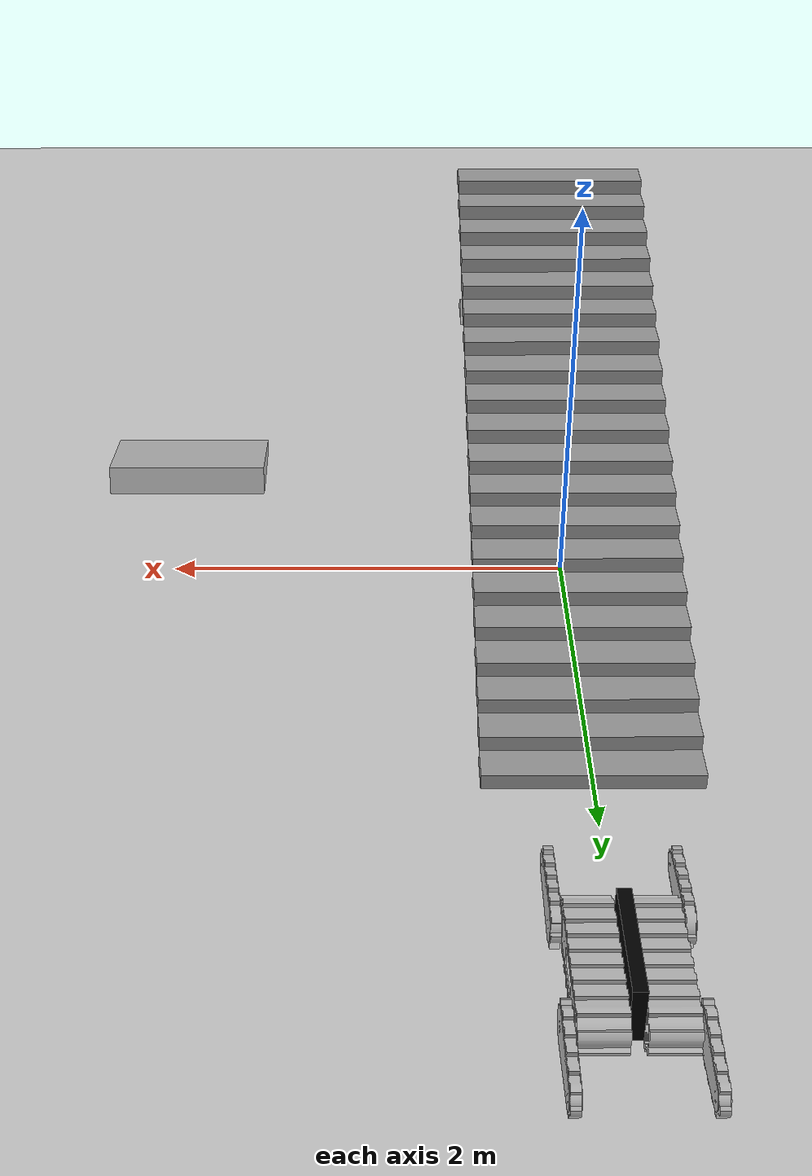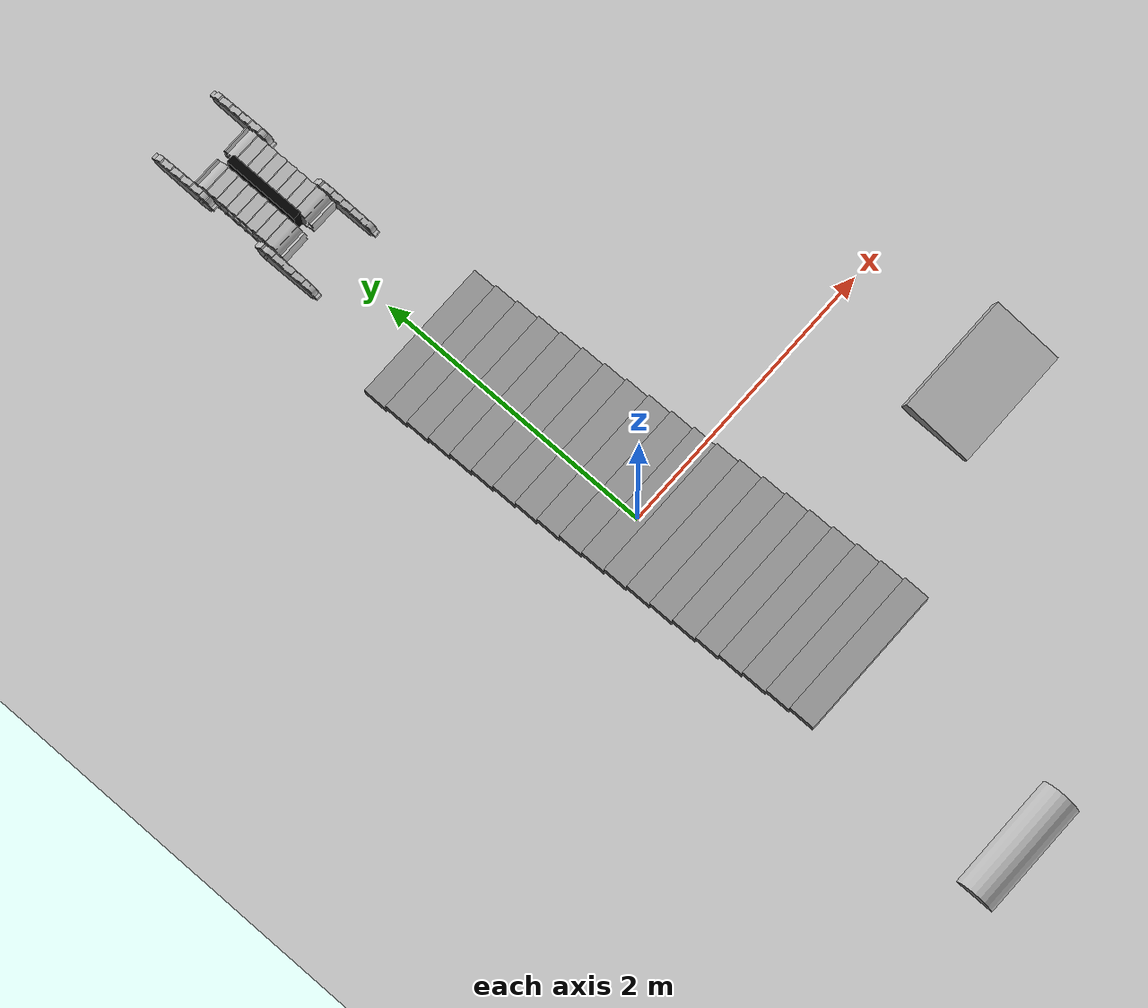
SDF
<?xml version="1.0" ?>
<sdf version="1.6">
    <world name="Nubot_Pummba_demo">
        <!--A demo world for tracked vehicles.-->

        <include>
            <uri>model://sun</uri>
        </include>

        <include>
            <uri>model://ground_plane</uri>
        </include>

        <include>
            <uri>model://stairs_very_simple</uri>
        </include>

        <include>
            <uri>model://cylinder_obstacle</uri>
        </include>

        <include>
            <uri>model://box_obstacle</uri>
        </include>

        <model name="Nubot_Pummba">
            <pose frame=''>0 3 0.15 0 0 -1.5708</pose>
            <include>
                <uri>model://Nubot_Pummba</uri>
            </include>
        </model>

    </world>
</sdf>

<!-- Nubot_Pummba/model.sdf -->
<sdf version='1.6'>
  <model name='Nubot_Pummba'>
    <!--base_link-->
    <link name='base_link'>
      <pose frame=''>0 0 0 0 0 0</pose>
      <inertial>
        <pose frame=''>-0.122 0 0.118 1.5708 -0 0</pose>
        <mass>10</mass>
        <inertia>
          <ixx>0.0545</ixx>
          <ixy>0</ixy>
          <ixz>0</ixz>
          <iyy>0.37442</iyy>
          <iyz>0</iyz>
          <izz>0.41992</izz>
        </inertia>
      </inertial>
      <self_collide>0</self_collide>
      <gravity>1</gravity>
      <kinematic>0</kinematic>
      <enable_wind>0</enable_wind>
      <visual name='base_link_visual'>
        <pose frame=''>0 0 0.055 0 -0 0</pose>
        <geometry>
          <box>
            <size>0.544 0.06 0.25</size>
          </box>
        </geometry>
        <material>
          <shader type='pixel'>
            <normal_map>__default__</normal_map>
          </shader>
          <script>
            <name>ModelPreview_1::base_link::base_link_visual_MATERIAL_</name>
            <uri>__default__</uri>
          </script>
          <ambient>0 0 0 1</ambient>
          <diffuse>0 0 0 1</diffuse>
          <specular>0 0 0 1</specular>
          <emissive>0 0 0 1</emissive>
        </material>
        <transparency>0</transparency>
        <cast_shadows>1</cast_shadows>
      </visual>
      <collision name='base_link_collision'>
        <laser_retro>0</laser_retro>
        <max_contacts>10</max_contacts>
        <pose frame=''>0 0 0.055 0 -0 0</pose>
        <geometry>
          <box>
            <size>0.544 0.06 0.25</size>
          </box>
        </geometry>
        <surface>
          <friction>
            <ode>
              <mu>1</mu>
              <mu2>1</mu2>
              <fdir1>0 0 0</fdir1>
              <slip1>0</slip1>
              <slip2>0</slip2>
            </ode>
            <torsional>
              <coefficient>1</coefficient>
              <patch_radius>0</patch_radius>
              <surface_radius>0</surface_radius>
              <use_patch_radius>1</use_patch_radius>
              <ode>
                <slip>0</slip>
              </ode>
            </torsional>
          </friction>
          <bounce>
            <restitution_coefficient>0</restitution_coefficient>
            <threshold>1e+06</threshold>
          </bounce>
          <contact>
            <collide_without_contact>0</collide_without_contact>
            <collide_without_contact_bitmask>1</collide_without_contact_bitmask>
            <collide_bitmask>1</collide_bitmask>
            <ode>
              <soft_cfm>0</soft_cfm>
              <soft_erp>0.2</soft_erp>
              <kp>1e+13</kp>
              <kd>1</kd>
              <max_vel>0.01</max_vel>
              <min_depth>0</min_depth>
            </ode>
          </contact>
        </surface>
      </collision>
    </link>

    <!--left_track-->
    <link name='left_track'>
      <pose frame=''>-0 0.132 0 0 -0 0</pose>
      <inertial>
        <pose frame=''>0 0 0 0 -0 0</pose>
        <mass>20</mass>
        <inertia>
          <ixx>0.15</ixx>
          <ixy>0</ixy>
          <ixz>0</ixz>
          <iyy>0.9</iyy>
          <iyz>0</iyz>
          <izz>0.9</izz>
        </inertia>
      </inertial>
      <gravity>1</gravity>
      <kinematic>0</kinematic>
      <self_collide>0</self_collide>
      <enable_wind>0</enable_wind>
      <visual name='left_track_visual_1'><!--main_track-->
        <pose frame=''>0.272 0 0 0 0 1.5708</pose>
        <geometry>
          <mesh>
            <uri>model://Nubot_Pummba/meshes/main_track.dae</uri>
          </mesh>
        </geometry>
      </visual>
      <visual name='left_track_visual'><!--main_board-->
        <pose frame=''>0 0.098 0 0 0 0</pose>
        <geometry>
          <mesh>
            <uri>model://Nubot_Pummba/meshes/main_board.dae</uri>
          </mesh>
        </geometry>
      </visual>
      <visual name='left_track_visual_2'>
        <pose frame=''>-0.272 0 0 1.5708 -0 0</pose>
        <geometry>
          <cylinder>
            <length>0.2</length>
            <radius>0.105</radius>
          </cylinder>
        </geometry>
        <material>
          <shader type='pixel'>
            <normal_map>__default__</normal_map>
          </shader>
          <script>
            <name>ModelPreview_1::left_track::left_track_visual_2_MATERIAL_</name>
            <uri>__default__</uri>
          </script>
          <ambient>0 0 0 1</ambient>
          <diffuse>0 0 0 1</diffuse>
          <specular>0 0 0 1</specular>
          <emissive>1 1 1 1</emissive>
        </material>
        <transparency>1</transparency><!--disappear the other wheel-->
        <cast_shadows>1</cast_shadows>
      </visual>
      <collision name='left_track_collision_1'>
        <max_contacts>10</max_contacts>
        <pose frame=''>0.272 0 0 1.5708 -0 0</pose>
        <geometry>
          <cylinder>
            <radius>0.105</radius>
            <length>0.2</length>
          </cylinder>
        </geometry>
        <surface>
          <friction>
            <ode>
              <mu>0.7</mu>
              <mu2>150</mu2>
              <fdir1>0 1 0</fdir1>
            </ode>
          </friction>
        </surface>
      </collision>
      <collision name='left_track_collision_2'>
        <max_contacts>10</max_contacts>
        <pose frame=''>-0.272 0 0 1.5708 -0 0</pose>
        <geometry>
          <cylinder>
            <radius>0.105</radius>
            <length>0.2</length>
          </cylinder>
        </geometry>
        <surface>
          <friction>
            <ode>
              <mu>0.7</mu>
              <mu2>150</mu2>
              <fdir1>0 1 0</fdir1>
            </ode>
          </friction>
        </surface>
      </collision>
      <collision name='left_track_collision'>
        <max_contacts>10</max_contacts>
        <pose frame=''>0 0 0 1.5708 -0 1.5708</pose>
        <geometry>
          <box>
            <size>0.2 0.21 0.544</size>
          </box>
        </geometry>
        <surface>
          <friction>
            <ode>
              <mu>0.7</mu>
              <mu2>150</mu2>
              <fdir1>0 1 0</fdir1>
            </ode>
          </friction>
        </surface>
      </collision>
    </link>

    <!--right_track-->
    <link name='right_track'>
      <pose frame=''>0 -0.132 -0 0 -0 0</pose>
      <inertial>
        <pose frame=''>0 0 0 0 -0 0</pose>
        <mass>20</mass>
        <inertia>
          <ixx>0.15</ixx>
          <ixy>0</ixy>
          <ixz>0</ixz>
          <iyy>0.9</iyy>
          <iyz>0</iyz>
          <izz>0.9</izz>
        </inertia>
      </inertial>
      <gravity>1</gravity>
      <kinematic>0</kinematic>
      <self_collide>0</self_collide>
      <enable_wind>0</enable_wind>
      <visual name='right_track_visual_2'><!--main_track-->
        <pose frame=''>-0.272 0 0 0 0 -1.5708</pose>
        <geometry>
          <mesh>
            <uri>model://Nubot_Pummba/meshes/main_track.dae</uri>
          </mesh>
        </geometry>
      </visual>
      <visual name='right_track_visual'><!--main_board-->
        <pose frame=''>0 -0.098 0 0 0 0</pose>
        <geometry>
          <mesh>
            <uri>model://Nubot_Pummba/meshes/main_board.dae</uri>
          </mesh>
        </geometry>
      </visual>
      <visual name='right_track_visual_1'>
        <pose frame=''>0.272 0 0 1.5708 -0 0</pose>
        <geometry>
          <cylinder>
            <length>0.2</length>
            <radius>0.105</radius>
          </cylinder>
        </geometry>
        <material>
          <shader type='pixel'>
            <normal_map>__default__</normal_map>
          </shader>
          <script>
            <name>ModelPreview_1::right_track::right_track_visual_1_MATERIAL_</name>
            <uri>__default__</uri>
          </script>
          <ambient>0 0 0 1</ambient>
          <diffuse>0 0 0 1</diffuse>
          <specular>0 0 0 1</specular>
          <emissive>1 1 1 1</emissive>
        </material>
        <transparency>1</transparency><!--disappear the other wheel-->
        <cast_shadows>1</cast_shadows>
      </visual>
      <collision name='right_track_collision_1'>
        <max_contacts>10</max_contacts>
        <pose frame=''>0.272 0 0 1.5708 -0 0</pose>
        <geometry>
          <cylinder>
            <radius>0.105</radius>
            <length>0.2</length>
          </cylinder>
        </geometry>
        <surface>
          <friction>
            <ode>
              <mu>0.7</mu>
              <mu2>150</mu2>
              <fdir1>0 1 0</fdir1>
            </ode>
          </friction>
        </surface>
      </collision>
      <collision name='right_track_collision'>
        <max_contacts>10</max_contacts>
        <pose frame=''>0 0 0 1.5708 -0 1.5708</pose>
        <geometry>
          <box>
            <size>0.2 0.21 0.544</size>
          </box>
        </geometry>
        <surface>
          <friction>
            <ode>
              <mu>0.7</mu>
              <mu2>150</mu2>
              <fdir1>0 1 0</fdir1>
            </ode>
          </friction>
        </surface>
      </collision>
      <collision name='right_track_collision_2'>
        <max_contacts>10</max_contacts>
        <pose frame=''>-0.272 0 0 1.5708 -0 0</pose>
        <geometry>
          <cylinder>
            <radius>0.105</radius>
            <length>0.2</length>
          </cylinder>
        </geometry>
        <surface>
          <friction>
            <ode>
              <mu>0.7</mu>
              <mu2>150</mu2>
              <fdir1>0 1 0</fdir1>
            </ode>
          </friction>
        </surface>
      </collision>
    </link>

    <!--front_left_flipper-->
    <link name='front_left_flipper'>
      <pose frame=''>0.272 0.263 0 0 -0.0 0</pose>
      <inertial>
        <pose frame=''>0.135 0 0 0 -0 0</pose>
        <mass>2.4</mass>
        <inertia>
          <ixx>0.00574</ixx>
          <ixy>0</ixy>
          <ixz>0</ixz>
          <iyy>0.05090</iyy>
          <iyz>0</iyz>
          <izz>0.04640</izz>
        </inertia>
      </inertial>
      <gravity>1</gravity>
      <velocity_decay/>
      <self_collide>1</self_collide>
      <kinematic>0</kinematic>
      <enable_wind>0</enable_wind>

      <visual name='front_left_flipper_visual_large_wheel_visual'><!--flipper_track-->
        <pose frame=''>0 0 0 0 0 -1.5708</pose>
        <geometry>
          <mesh>
            <uri>model://Nubot_Pummba/meshes/flipper_track.dae</uri>
          </mesh>
        </geometry>
      </visual>
      <visual name='front_left_flipper_visual_small_wheel_visual_1'><!--flipper_board inside-->
        <pose frame=''>0 -0.023 0 0 0 3.1416</pose>
        <geometry>
          <mesh>
            <uri>model://Nubot_Pummba/meshes/flipper_board.dae</uri>
          </mesh>
        </geometry>
      </visual>
      <visual name='front_left_flipper_visual_middle_bar_visual_4'><!--flipper_board outside-->
        <pose frame=''>0 0.023 0 0 0 3.1416</pose>
        <geometry>
          <mesh>
            <uri>model://Nubot_Pummba/meshes/flipper_board.dae</uri>
          </mesh>
        </geometry>
      </visual>
      <visual name='front_left_flipper_visual_bottom_bar_visual_3'>
        <pose frame=''>0.1635 0 -0.04 0 -0.076 0</pose>
        <geometry>
          <box>
            <size>0.327 0.048 0.105</size>
          </box>
        </geometry>
        <material>
          <shader type='pixel'>
            <normal_map>__default__</normal_map>
          </shader>
          <script>
            <name>ModelPreview_1::front_left_flipper::front_left_flipper_visual_bottom_bar_visual_3_MATERIAL_</name>
            <uri>__default__</uri>
          </script>
          <ambient>0 0 0 1</ambient>
          <diffuse>0 0 0 1</diffuse>
          <specular>0 0 0 1</specular>
          <emissive>0 0 0 1</emissive>
        </material>
        <transparency>1</transparency><!--disappear the bar-->
        <cast_shadows>1</cast_shadows>
      </visual>
      <visual name='front_left_flipper_visual_top_bar_visual_2'>
        <pose frame=''>0.1635 0 0.04 0 0.076 0</pose>
        <geometry>
          <box>
            <size>0.327 0.048 0.105</size>
          </box>
        </geometry>
        <material>
          <shader type='pixel'>
            <normal_map>__default__</normal_map>
          </shader>
          <script>
            <name>ModelPreview_1::front_left_flipper::front_left_flipper_visual_top_bar_visual_2_MATERIAL_</name>
            <uri>__default__</uri>
          </script>
          <ambient>0 0 0 1</ambient>
          <diffuse>0 0 0 1</diffuse>
          <specular>0 0 0 1</specular>
          <emissive>0 0 0 1</emissive>
        </material>
        <transparency>1</transparency><!--disappear the bar-->
        <cast_shadows>1</cast_shadows>
      </visual>

      <collision name='front_left_flipper_collision_large_wheel_collision'>
        <max_contacts>20</max_contacts>
        <pose frame=''>0 0 0 1.5708 -0 0</pose>
        <geometry>
          <cylinder>
            <radius>0.105</radius>
            <length>0.04</length>
          </cylinder>
        </geometry>
        <surface>
          <friction>
            <ode>
              <mu>0.7</mu>
              <mu2>150</mu2>
              <fdir1>0 1 0</fdir1>
            </ode>
          </friction>
          <contact>
            <ode/>
          </contact>
        </surface>
      </collision>
      <collision name='front_left_flipper_collision_small_wheel_collision_1'>
        <max_contacts>20</max_contacts>
        <pose frame=''>0.327 0 0 1.5708 -0 0</pose>
        <geometry>
          <cylinder>
            <radius>0.08</radius>
            <length>0.04</length>
          </cylinder>
        </geometry>
        <surface>
          <friction>
            <ode>
              <mu>0.7</mu>
              <mu2>150</mu2>
              <fdir1>0 1 0</fdir1>
            </ode>
          </friction>
          <contact>
            <ode/>
          </contact>
        </surface>
      </collision>
      <collision name='front_left_flipper_collision_middle_bar_collision_4'>
        <max_contacts>20</max_contacts>
        <pose frame=''>0.166 0 0 0 0 0</pose>
        <geometry>
          <box>
            <size>0.2 0.048 0.07</size>
          </box>
        </geometry>
        <surface>
          <friction>
            <ode>
              <mu>0.7</mu>
              <mu2>150</mu2>
              <fdir1>0 1 0</fdir1>
            </ode>
          </friction>
          <contact>
            <ode/>
          </contact>
        </surface>
      </collision>
      <collision name='front_left_flipper_collision_bottom_bar_collision_3'>
        <max_contacts>20</max_contacts>
        <pose frame=''>0.1635 0 -0.04 0 -0.076 0</pose>
        <geometry>
          <box>
            <size>0.327 0.048 0.105</size>
          </box>
        </geometry>
        <surface>
          <friction>
            <ode>
              <mu>0.7</mu>
              <mu2>150</mu2>
              <fdir1>0 1 0</fdir1>
            </ode>
          </friction>
          <contact>
            <ode/>
          </contact>
        </surface>
      </collision>
      <collision name='front_left_flipper_collision_top_bar_collision_2'>
        <max_contacts>20</max_contacts>
        <pose frame=''>0.1635 0 0.04 0 0.076 0</pose>
        <geometry>
          <box>
            <size>0.327 0.048 0.105</size>
          </box>
        </geometry>
        <surface>
          <friction>
            <ode>
              <mu>0.7</mu>
              <mu2>150</mu2>
              <fdir1>0 1 0</fdir1>
            </ode>
          </friction>
          <contact>
            <ode/>
          </contact>
        </surface>
      </collision>
    </link>

    <!--rear_left_flipper-->
    <link name='rear_left_flipper'>
      <pose frame=''>-0.272 0.263 0 3.1416 -0.0 3.1416</pose>
      <inertial>
        <pose frame=''>0.135 0 0 0 -0 0</pose>
        <mass>2.4</mass>
        <inertia>
          <ixx>0.00574</ixx>
          <ixy>0</ixy>
          <ixz>0</ixz>
          <iyy>0.05090</iyy>
          <iyz>0</iyz>
          <izz>0.04640</izz>
        </inertia>
      </inertial>
      <gravity>1</gravity>
      <velocity_decay/>
      <self_collide>1</self_collide>
      <kinematic>0</kinematic>
      <enable_wind>0</enable_wind>
      <visual name='rear_left_flipper_visual_large_wheel_visual'><!--flipper_track-->
        <pose frame=''>0 0 0 0 0 -1.5708</pose>
        <geometry>
          <mesh>
            <uri>model://Nubot_Pummba/meshes/flipper_track.dae</uri>
          </mesh>
        </geometry>
      </visual>
      <visual name='rear_left_flipper_visual_small_wheel_visual_1'><!--flipper_board inside-->
        <pose frame=''>0 -0.023 0 0 0 3.1416</pose>
        <geometry>
          <mesh>
            <uri>model://Nubot_Pummba/meshes/flipper_board.dae</uri>
          </mesh>
        </geometry>
      </visual>
      <visual name='rear_left_flipper_visual_middle_bar_visual_4'><!--flipper_board outside-->
        <pose frame=''>0 0.023 0 0 0 3.1416</pose>
        <geometry>
          <mesh>
            <uri>model://Nubot_Pummba/meshes/flipper_board.dae</uri>
          </mesh>
        </geometry>
      </visual>
      <visual name='rear_left_flipper_visual_bottom_bar_visual_3'>
        <pose frame=''>0.1653 0 -0.04 0 -0.076 0</pose>
        <geometry>
          <box>
            <size>0.327 0.048 0.105</size>
          </box>
        </geometry>
        <material>
          <shader type='pixel'>
            <normal_map>__default__</normal_map>
          </shader>
          <script>
            <name>ModelPreview_1::rear_left_flipper::rear_left_flipper_visual_bottom_bar_visual_3_MATERIAL_</name>
            <uri>__default__</uri>
          </script>
          <ambient>0 0 0 1</ambient>
          <diffuse>0 0 0 1</diffuse>
          <specular>0 0 0 1</specular>
          <emissive>0 0 0 1</emissive>
        </material>
        <transparency>1</transparency><!--disappear the bar-->
        <cast_shadows>1</cast_shadows>
      </visual>
      <visual name='rear_left_flipper_visual_top_bar_visual_2'>
        <pose frame=''>0.1635 0 0.04 0 0.076 0</pose>
        <geometry>
          <box>
            <size>0.327 0.048 0.105</size>
          </box>
        </geometry>
        <material>
          <shader type='pixel'>
            <normal_map>__default__</normal_map>
          </shader>
          <script>
            <name>ModelPreview_1::rear_left_flipper::rear_left_flipper_visual_top_bar_visual_2_MATERIAL_</name>
            <uri>__default__</uri>
          </script>
          <ambient>0 0 0 1</ambient>
          <diffuse>0 0 0 1</diffuse>
          <specular>0 0 0 1</specular>
          <emissive>0 0 0 1</emissive>
        </material>
        <transparency>1</transparency><!--disappear the bar-->
        <cast_shadows>1</cast_shadows>
      </visual>

      <collision name='rear_left_flipper_collision_large_wheel_collision'>
        <max_contacts>20</max_contacts>
        <pose frame=''>0 0 0 1.5708 -0 0</pose>
        <geometry>
          <cylinder>
            <radius>0.105</radius>
            <length>0.04</length>
          </cylinder>
        </geometry>
        <surface>
          <friction>
            <ode>
              <mu>0.7</mu>
              <mu2>150</mu2>
              <fdir1>0 1 0</fdir1>
            </ode>
          </friction>
          <contact>
            <ode/>
          </contact>
        </surface>
      </collision>
      <collision name='rear_left_flipper_collision_small_wheel_collision_1'>
        <max_contacts>20</max_contacts>
        <pose frame=''>0.327 0 0 1.5708 -0 0</pose>
        <geometry>
          <cylinder>
            <radius>0.08</radius>
            <length>0.04</length>
          </cylinder>
        </geometry>
        <surface>
          <friction>
            <ode>
              <mu>0.7</mu>
              <mu2>150</mu2>
              <fdir1>0 1 0</fdir1>
            </ode>
          </friction>
        </surface>
      </collision>
      <collision name='rear_left_flipper_collision_middle_bar_collision_4'>
        <max_contacts>20</max_contacts>
        <pose frame=''>0.166 0 0 0 0 0</pose>
        <geometry>
          <box>
            <size>0.2 0.048 0.07</size>
          </box>
        </geometry>
        <surface>
          <friction>
            <ode>
              <mu>0.7</mu>
              <mu2>150</mu2>
              <fdir1>0 1 0</fdir1>
            </ode>
          </friction>
        </surface>
      </collision>
      <collision name='rear_left_flipper_collision_bottom_bar_collision_3'>
        <max_contacts>20</max_contacts>
        <pose frame=''>0.1635 0 -0.04 0 -0.076 0</pose>
        <geometry>
          <box>
            <size>0.327 0.048 0.105</size>
          </box>
        </geometry>
        <surface>
          <friction>
            <ode>
              <mu>0.7</mu>
              <mu2>150</mu2>
              <fdir1>0 1 0</fdir1>
            </ode>
          </friction>
        </surface>
      </collision>
      <collision name='rear_left_flipper_collision_top_bar_collision_2'>
        <max_contacts>20</max_contacts>
        <pose frame=''>0.1635 0 0.04 0 0.076 0</pose>
        <geometry>
          <box>
            <size>0.327 0.048 0.105</size>
          </box>
        </geometry>
        <surface>
          <friction>
            <ode>
              <mu>0.7</mu>
              <mu2>150</mu2>
              <fdir1>0 1 0</fdir1>
            </ode>
          </friction>
        </surface>
      </collision>
    </link>

    <!--front_right_flipper-->
    <link name='front_right_flipper'>
      <pose frame=''>0.272 -0.263 0 3.1416 0.0 3.1416</pose>
      <inertial>
        <pose frame=''>-0.135 0 0 0 -0 0</pose>
        <mass>2.4</mass>
        <inertia>
          <ixx>0.00574</ixx>
          <ixy>0</ixy>
          <ixz>0</ixz>
          <iyy>0.05090</iyy>
          <iyz>0</iyz>
          <izz>0.04640</izz>
        </inertia>
      </inertial>
      <gravity>1</gravity>
      <velocity_decay/>
      <self_collide>1</self_collide>
      <kinematic>0</kinematic>
      <enable_wind>0</enable_wind>

      <visual name='front_right_flipper_visual_large_wheel_visual'><!--flipper_track-->
        <pose frame=''>0 0 0 0 0 1.5708</pose>
        <geometry>
          <mesh>
            <uri>model://Nubot_Pummba/meshes/flipper_track.dae</uri>
          </mesh>
        </geometry>
      </visual>
      <visual name='front_right_flipper_visual_small_wheel_visual_1'><!--flipper_board inside-->
        <pose frame=''>0 0.023 0 0 0 0</pose>
        <geometry>
          <mesh>
            <uri>model://Nubot_Pummba/meshes/flipper_board.dae</uri>
          </mesh>
        </geometry>
      </visual>
      <visual name='front_right_flipper_visual_middle_bar_visual_4'><!--flipper_board outside-->
        <pose frame=''>0 -0.023 0 -0 0 0</pose>
        <geometry>
          <mesh>
            <uri>model://Nubot_Pummba/meshes/flipper_board.dae</uri>
          </mesh>
        </geometry>
      </visual>
      <visual name='front_right_flipper_visual_bottom_bar_visual_3'>
        <pose frame=''>-0.1635 0 -0.04 0 -0.076 -3.1416</pose>
        <geometry>
          <box>
            <size>0.327 0.048 0.105</size>
          </box>
        </geometry>
        <material>
          <shader type='pixel'>
            <normal_map>__default__</normal_map>
          </shader>
          <script>
            <name>ModelPreview_1::front_right_flipper::front_right_flipper_visual_bottom_bar_visual_3_MATERIAL_</name>
            <uri>__default__</uri>
          </script>
          <ambient>0 0 0 1</ambient>
          <diffuse>0 0 0 1</diffuse>
          <specular>0 0 0 1</specular>
          <emissive>0 0 0 1</emissive>
        </material>
        <transparency>1</transparency><!--disappear the bar-->
        <cast_shadows>1</cast_shadows>
      </visual>
      <visual name='front_right_flipper_visual_top_bar_visual_2'>
        <pose frame=''>-0.1635 0 0.04 -0 0.076 -3.1416</pose>
        <geometry>
          <box>
            <size>0.327 0.048 0.105</size>
          </box>
        </geometry>
        <material>
          <shader type='pixel'>
            <normal_map>__default__</normal_map>
          </shader>
          <script>
            <name>ModelPreview_1::front_right_flipper::front_right_flipper_visual_top_bar_visual_2_MATERIAL_</name>
            <uri>__default__</uri>
          </script>
          <ambient>0 0 0 1</ambient>
          <diffuse>0 0 0 1</diffuse>
          <specular>0 0 0 1</specular>
          <emissive>0 0 0 1</emissive>
        </material>
        <transparency>1</transparency><!--disappear the bar-->
        <cast_shadows>1</cast_shadows>
      </visual>

      <collision name='front_right_flipper_collision_large_wheel_collision'>
        <max_contacts>20</max_contacts>
        <pose frame=''>0 0 0 1.5708 -0 0</pose>
        <geometry>
          <cylinder>
            <radius>0.105</radius>
            <length>0.04</length>
          </cylinder>
        </geometry>
        <surface>
          <friction>
            <ode>
              <mu>0.7</mu>
              <mu2>150</mu2>
              <fdir1>0 1 0</fdir1>
            </ode>
          </friction>
        </surface>
      </collision>
      <collision name='front_right_flipper_collision_small_wheel_collision_1'>
        <max_contacts>20</max_contacts>
        <pose frame=''>-0.327 0 0 1.5708 -0 0</pose>
        <geometry>
          <cylinder>
            <radius>0.08</radius>
            <length>0.04</length>
          </cylinder>
        </geometry>
        <surface>
          <friction>
            <ode>
              <mu>0.7</mu>
              <mu2>150</mu2>
              <fdir1>0 1 0</fdir1>
            </ode>
          </friction>
        </surface>
      </collision>
      <collision name='front_right_flipper_collision_middle_bar_collision_4'>
        <max_contacts>20</max_contacts>
        <pose frame=''>-0.166 0 0 -0 0 -3.1416</pose>
        <geometry>
          <box>
            <size>0.2 0.048 0.07</size>
          </box>
        </geometry>
        <surface>
          <friction>
            <ode>
              <mu>0.7</mu>
              <mu2>150</mu2>
              <fdir1>0 1 0</fdir1>
            </ode>
          </friction>
        </surface>
      </collision>
      <collision name='front_right_flipper_collision_bottom_bar_collision_3'>
        <max_contacts>20</max_contacts>
        <pose frame=''>-0.1635 0 -0.04 0 -0.076 -3.1416</pose>
        <geometry>
          <box>
            <size>0.327 0.048 0.105</size>
          </box>
        </geometry>
        <surface>
          <friction>
            <ode>
              <mu>0.7</mu>
              <mu2>150</mu2>
              <fdir1>0 1 0</fdir1>
            </ode>
          </friction>
        </surface>
      </collision>
      <collision name='front_right_flipper_collision_top_bar_collision_2'>
        <max_contacts>20</max_contacts>
        <pose frame=''>-0.1635 0 0.04 -0 0.076 -3.1416</pose>
        <geometry>
          <box>
            <size>0.327 0.048 0.105</size>
          </box>
        </geometry>
        <surface>
          <friction>
            <ode>
              <mu>0.7</mu>
              <mu2>150</mu2>
              <fdir1>0 1 0</fdir1>
            </ode>
          </friction>
        </surface>
      </collision>
    </link>

    <!--rear_right_flipper-->
    <link name='rear_right_flipper'>
      <pose frame=''>-0.272 -0.263 0 0 0.0 0</pose>
      <inertial>
        <pose frame=''>-0.135 0 0 0 -0 0</pose>
        <mass>2.4</mass>
        <inertia>
          <ixx>0.00574</ixx>
          <ixy>0</ixy>
          <ixz>0</ixz>
          <iyy>0.05090</iyy>
          <iyz>0</iyz>
          <izz>0.04640</izz>
        </inertia>
      </inertial>
      <gravity>1</gravity>
      <velocity_decay/>
      <self_collide>1</self_collide>
      <kinematic>0</kinematic>
      <enable_wind>0</enable_wind>
      <visual name='rear_right_flipper_visual_large_wheel_visual'><!--flipper_track-->
        <pose frame=''>0 0 0 0 0 1.5708</pose>
        <geometry>
          <mesh>
            <uri>model://Nubot_Pummba/meshes/flipper_track.dae</uri>
          </mesh>
        </geometry>
      </visual>
      <visual name='rear_right_flipper_visual_small_wheel_visual_1'><!--flipper_board inside-->
        <pose frame=''>0 0.023 0 0 0 0</pose>
        <geometry>
          <mesh>
            <uri>model://Nubot_Pummba/meshes/flipper_board.dae</uri>
          </mesh>
        </geometry>
      </visual>
      <visual name='rear_right_flipper_visual_middle_bar_visual_4'><!--flipper_board outsides-->
        <pose frame=''>0 -0.023 0 -0 0 0</pose>
        <geometry>
          <mesh>
            <uri>model://Nubot_Pummba/meshes/flipper_board.dae</uri>
          </mesh>
        </geometry>
      </visual>
      <visual name='rear_right_flipper_visual_bottom_bar_visual_3'>
        <pose frame=''>-0.1635 0 -0.04 0 -0.076 -3.1416</pose>
        <geometry>
          <box>
            <size>0.327 0.048 0.105</size>
          </box>
        </geometry>
        <material>
          <shader type='pixel'>
            <normal_map>__default__</normal_map>
          </shader>
          <script>
            <name>ModelPreview_1::rear_right_flipper::rear_right_flipper_visual_bottom_bar_visual_3_MATERIAL_</name>
            <uri>__default__</uri>
          </script>
          <ambient>0 0 0 1</ambient>
          <diffuse>0 0 0 1</diffuse>
          <specular>0 0 0 1</specular>
          <emissive>0 0 0 1</emissive>
        </material>
        <transparency>1</transparency><!--disappear the bar-->
        <cast_shadows>1</cast_shadows>
      </visual>
      <visual name='rear_right_flipper_visual_top_bar_visual_2'>
        <pose frame=''>-0.1635 0 0.04 -0 0.076 -3.1416</pose>
        <geometry>
          <box>
            <size>0.327 0.048 0.105</size>
          </box>
        </geometry>
        <material>
          <shader type='pixel'>
            <normal_map>__default__</normal_map>
          </shader>
          <script>
            <name>ModelPreview_1::rear_right_flipper::rear_right_flipper_visual_top_bar_visual_2_MATERIAL_</name>
            <uri>__default__</uri>
          </script>
          <ambient>0 0 0 1</ambient>
          <diffuse>0 0 0 1</diffuse>
          <specular>0 0 0 1</specular>
          <emissive>0 0 0 1</emissive>
        </material>
        <transparency>1</transparency><!--disappear the bar-->
        <cast_shadows>1</cast_shadows>
      </visual>

      <collision name='rear_right_flipper_collision_large_wheel_collision'>
        <max_contacts>20</max_contacts>
        <pose frame=''>0 0 0 1.5708 -0 0</pose>
        <geometry>
          <cylinder>
            <radius>0.105</radius>
            <length>0.04</length>
          </cylinder>
        </geometry>
        <surface>
          <friction>
            <ode>
              <mu>0.7</mu>
              <mu2>150</mu2>
              <fdir1>0 1 0</fdir1>
            </ode>
          </friction>
        </surface>
      </collision>
      <collision name='rear_right_flipper_collision_small_wheel_collision_1'>
        <max_contacts>20</max_contacts>
        <pose frame=''>-0.327 0 0 1.5708 -0 0</pose>
        <geometry>
          <cylinder>
            <radius>0.08</radius>
            <length>0.04</length>
          </cylinder>
        </geometry>
        <surface>
          <friction>
            <ode>
              <mu>0.7</mu>
              <mu2>150</mu2>
              <fdir1>0 1 0</fdir1>
            </ode>
          </friction>
        </surface>
      </collision>
      <collision name='rear_right_flipper_collision_middle_bar_collision_4'>
        <max_contacts>20</max_contacts>
        <pose frame=''>-0.166 0 0 -0 0 -3.1416</pose>
        <geometry>
          <box>
            <size>0.2 0.048 0.07</size>
          </box>
        </geometry>
        <surface>
          <friction>
            <ode>
              <mu>0.7</mu>
              <mu2>150</mu2>
              <fdir1>0 1 0</fdir1>
            </ode>
          </friction>
        </surface>
      </collision>
      <collision name='rear_right_flipper_collision_bottom_bar_collision_3'>
        <max_contacts>20</max_contacts>
        <pose frame=''>-0.1635 0 -0.04 0 -0.076 -3.1416</pose>
        <geometry>
          <box>
            <size>0.327 0.048 0.105</size>
          </box>
        </geometry>
        <surface>
          <friction>
            <ode>
              <mu>0.7</mu>
              <mu2>150</mu2>
              <fdir1>0 1 0</fdir1>
            </ode>
          </friction>
        </surface>
      </collision>
      <collision name='rear_right_flipper_collision_top_bar_collision_2'>
        <max_contacts>20</max_contacts>
        <pose frame=''>-0.1635 0 0.04 -0 0.076 -3.1416</pose>
        <geometry>
          <box>
            <size>0.327 0.048 0.105</size>
          </box>
        </geometry>
        <surface>
          <friction>
            <ode>
              <mu>0.7</mu>
              <mu2>150</mu2>
              <fdir1>0 1 0</fdir1>
            </ode>
          </friction>
        </surface>
      </collision>
    </link>

    <!--joints-->
    <!--main_track joints-->
    <joint name='left_track_j' type='fixed'>
      <parent>base_link</parent>
      <child>left_track</child>
    </joint>
    <joint name='right_track_j' type='fixed'>
      <parent>base_link</parent>
      <child>right_track</child>
    </joint>

    <!--left_flipper joints-->
    <joint name='front_left_flipper_j' type='revolute'>
      <parent>left_track</parent>
      <child>front_left_flipper</child>
      <pose frame=''>0 0 0 0 -0 0</pose>
      <axis>
        <xyz>0 1 0</xyz>
        <use_parent_model_frame>1</use_parent_model_frame>
        <limit>
          <lower>-3.1416</lower>
          <upper>3.1416</upper>
          <effort>-1</effort>
          <velocity>0.15</velocity>
        </limit>
        <dynamics>
          <spring_reference>0</spring_reference>
          <spring_stiffness>0</spring_stiffness>
          <!--The physical velocity dependent viscous damping coefficient of the joint-->
          <!--Due to the controll method is directly set the position target-->
          <damping>10</damping>
          <friction>0</friction>
        </dynamics>
      </axis>
      <physics>
        <ode>
          <implicit_spring_damper>1</implicit_spring_damper>
          <cfm_damping>1</cfm_damping>
          <limit>
            <cfm>0</cfm>
            <erp>0.2</erp>
          </limit>
        </ode>
      </physics>
    </joint>
    <joint name='rear_left_flipper_j' type='revolute'>
      <parent>left_track</parent>
      <child>rear_left_flipper</child>
      <pose frame=''>0 0 0 0 -0 0</pose>
      <axis>
        <xyz>0 1 0</xyz>
        <use_parent_model_frame>1</use_parent_model_frame>
        <limit>
          <lower>-3.1416</lower>
          <upper>3.1416</upper>
          <effort>-1</effort>
          <velocity>0.15</velocity>
        </limit>
        <dynamics>
          <spring_reference>0</spring_reference>
          <spring_stiffness>0</spring_stiffness>
          <!--The physical velocity dependent viscous damping coefficient of the joint-->
          <!--Due to the controll method is directly set the position target-->
          <damping>10</damping>
          <friction>0</friction>
        </dynamics>
      </axis>
      <physics>
        <ode>
          <implicit_spring_damper>1</implicit_spring_damper>
          <cfm_damping>1</cfm_damping>
          <limit>
            <cfm>0</cfm>
            <erp>0.2</erp>
          </limit>
        </ode>
      </physics>
    </joint>

    <!--right_flipper joints-->
    <joint name='front_right_flipper_j' type='revolute'>
      <parent>right_track</parent>
      <child>front_right_flipper</child>
      <pose frame=''>0 0 0 0 -0 0</pose>
      <axis>
        <xyz>0 1 0</xyz>
        <use_parent_model_frame>1</use_parent_model_frame>
        <limit>
          <lower>-3.1416</lower>
          <upper>3.1416</upper>
          <effort>-1</effort>
          <velocity>0.15</velocity>
        </limit>
        <dynamics>
          <spring_reference>0</spring_reference>
          <spring_stiffness>0</spring_stiffness>
          <!--The physical velocity dependent viscous damping coefficient of the joint-->
          <!--Due to the controll method is directly set the position target-->
          <damping>10</damping>
          <friction>0</friction>
        </dynamics>
      </axis>
      <physics>
        <ode>
          <implicit_spring_damper>1</implicit_spring_damper>
          <cfm_damping>1</cfm_damping>
          <limit>
            <cfm>0</cfm>
            <erp>0.2</erp>
          </limit>
        </ode>
      </physics>
    </joint>
    <joint name='rear_right_flipper_j' type='revolute'>
      <parent>right_track</parent>
      <child>rear_right_flipper</child>
      <pose frame=''>0 0 0 0 -0 0</pose>
      <axis>
        <xyz>0 1 0</xyz>
        <use_parent_model_frame>1</use_parent_model_frame>
        <limit>
          <lower>-3.1416</lower>
          <upper>3.1416</upper>
          <effort>-1</effort>
          <velocity>0.15</velocity>
        </limit>
        <dynamics>
          <spring_reference>0</spring_reference>
          <spring_stiffness>0</spring_stiffness>
          <!--The physical velocity dependent viscous damping coefficient of the joint-->
          <!--Due to the controll method is directly set the position target-->
          <damping>10</damping>
          <friction>0</friction>
        </dynamics>
      </axis>
      <physics>
        <ode>
          <implicit_spring_damper>1</implicit_spring_damper>
          <cfm_damping>1</cfm_damping>
          <limit>
            <cfm>0</cfm>
            <erp>0.2</erp>
          </limit>
        </ode>
      </physics>
    </joint>

    <static>0</static>
    <allow_auto_disable>1</allow_auto_disable>

    <plugin name='Nubot_Pummba_Gazebo_Plugin' filename='libNubotPummbaGazeboPlugin.so'>
      <!--The link tags of tracks-->
      <body>base_link</body>
      <left_track>left_track</left_track>
      <right_track>right_track</right_track>
      <left_flipper>front_left_flipper</left_flipper>
      <left_flipper>rear_left_flipper</left_flipper>
      <right_flipper>front_right_flipper</right_flipper>
      <right_flipper>rear_right_flipper</right_flipper>
      <!--The flippers' joint tag-->
      <front_left_flipper_j>front_left_flipper_j</front_left_flipper_j>
      <rear_left_flipper_j>rear_left_flipper_j</rear_left_flipper_j>
      <front_right_flipper_j>front_right_flipper_j</front_right_flipper_j>
      <rear_right_flipper_j>rear_right_flipper_j</rear_right_flipper_j>
      <!--The Mu/Mu2 of tracks, which influnce the simulating performance-->
      <track_mu>2</track_mu>
      <track_mu2>0.5</track_mu2>
      <!--The PID parameter of flippers position controll & initial position 1.5708 -->
      <flip_p>1000</flip_p>
      <flip_i>1</flip_i>
      <flip_d>0</flip_d>
      <flip_initial>1.5708</flip_initial>
      <!--The parameters of tracks-->
      <tracksSeparation>0.165</tracksSeparation>
      <steeringEfficiency>0.5</steeringEfficiency>
      <maxLinearSpeed>2.0</maxLinearSpeed>
      <maxAngularSpeed>1.5</maxAngularSpeed>
    </plugin>

  </model>
</sdf>

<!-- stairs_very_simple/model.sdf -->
<sdf version="1.6">
    <model name='stairs_very_simple'>
            <pose frame=''>0 0 0 0 0 0</pose>
            <link name='Stairs_3'>
                <visual name='Stairs_3_Visual_0'>
                    <pose frame=''>0 1.6625 0.0375 0 -0 0</pose>
                    <geometry>
                        <box>
                            <size>1 0.175 0.075</size>
                        </box>
                    </geometry>
                    <material>
                        <script>
                            <uri>file://media/materials/scripts/gazebo.material</uri>
                            <name>Gazebo/Grey</name>
                        </script>
                        <ambient>1 1 1 1</ambient>
                    </material>
                    <meta>
                        <layer>0</layer>
                    </meta>
                </visual>
                <collision name='Stairs_3_Collision_0'>
                    <geometry>
                        <box>
                            <size>1 0.175 0.075</size>
                        </box>
                    </geometry>
                    <pose frame=''>0 1.6625 0.0375 0 -0 0</pose>
                </collision>
                <visual name='Stairs_3_Visual_1'>
                    <pose frame=''>0 1.4875 0.1125 0 -0 0</pose>
                    <geometry>
                        <box>
                            <size>1 0.175 0.075</size>
                        </box>
                    </geometry>
                    <material>
                        <script>
                            <uri>file://media/materials/scripts/gazebo.material</uri>
                            <name>Gazebo/Grey</name>
                        </script>
                        <ambient>1 1 1 1</ambient>
                    </material>
                    <meta>
                        <layer>0</layer>
                    </meta>
                </visual>
                <collision name='Stairs_3_Collision_1'>
                    <geometry>
                        <box>
                            <size>1 0.175 0.075</size>
                        </box>
                    </geometry>
                    <pose frame=''>0 1.4875 0.1125 0 -0 0</pose>
                </collision>
                <visual name='Stairs_3_Visual_2'>
                    <pose frame=''>0 1.3125 0.1875 0 -0 0</pose>
                    <geometry>
                        <box>
                            <size>1 0.175 0.075</size>
                        </box>
                    </geometry>
                    <material>
                        <script>
                            <uri>file://media/materials/scripts/gazebo.material</uri>
                            <name>Gazebo/Grey</name>
                        </script>
                        <ambient>1 1 1 1</ambient>
                    </material>
                    <meta>
                        <layer>0</layer>
                    </meta>
                </visual>
                <collision name='Stairs_3_Collision_2'>
                    <geometry>
                        <box>
                            <size>1 0.175 0.075</size>
                        </box>
                    </geometry>
                    <pose frame=''>0 1.3125 0.1875 0 -0 0</pose>
                </collision>
                <visual name='Stairs_3_Visual_3'>
                    <pose frame=''>0 1.1375 0.2625 0 -0 0</pose>
                    <geometry>
                        <box>
                            <size>1 0.175 0.075</size>
                        </box>
                    </geometry>
                    <material>
                        <script>
                            <uri>file://media/materials/scripts/gazebo.material</uri>
                            <name>Gazebo/Grey</name>
                        </script>
                        <ambient>1 1 1 1</ambient>
                    </material>
                    <meta>
                        <layer>0</layer>
                    </meta>
                </visual>
                <collision name='Stairs_3_Collision_3'>
                    <geometry>
                        <box>
                            <size>1 0.175 0.075</size>
                        </box>
                    </geometry>
                    <pose frame=''>0 1.1375 0.2625 0 -0 0</pose>
                </collision>
                <visual name='Stairs_3_Visual_4'>
                    <pose frame=''>0 0.9625 0.3375 0 -0 0</pose>
                    <geometry>
                        <box>
                            <size>1 0.175 0.075</size>
                        </box>
                    </geometry>
                    <material>
                        <script>
                            <uri>file://media/materials/scripts/gazebo.material</uri>
                            <name>Gazebo/Grey</name>
                        </script>
                        <ambient>1 1 1 1</ambient>
                    </material>
                    <meta>
                        <layer>0</layer>
                    </meta>
                </visual>
                <collision name='Stairs_3_Collision_4'>
                    <geometry>
                        <box>
                            <size>1 0.175 0.075</size>
                        </box>
                    </geometry>
                    <pose frame=''>0 0.9625 0.3375 0 -0 0</pose>
                </collision>
                <visual name='Stairs_3_Visual_5'>
                    <pose frame=''>0 0.7875 0.4125 0 -0 0</pose>
                    <geometry>
                        <box>
                            <size>1 0.175 0.075</size>
                        </box>
                    </geometry>
                    <material>
                        <script>
                            <uri>file://media/materials/scripts/gazebo.material</uri>
                            <name>Gazebo/Grey</name>
                        </script>
                        <ambient>1 1 1 1</ambient>
                    </material>
                    <meta>
                        <layer>0</layer>
                    </meta>
                </visual>
                <collision name='Stairs_3_Collision_5'>
                    <geometry>
                        <box>
                            <size>1 0.175 0.075</size>
                        </box>
                    </geometry>
                    <pose frame=''>0 0.7875 0.4125 0 -0 0</pose>
                </collision>
                <visual name='Stairs_3_Visual_6'>
                    <pose frame=''>0 0.6125 0.4875 0 -0 0</pose>
                    <geometry>
                        <box>
                            <size>1 0.175 0.075</size>
                        </box>
                    </geometry>
                    <material>
                        <script>
                            <uri>file://media/materials/scripts/gazebo.material</uri>
                            <name>Gazebo/Grey</name>
                        </script>
                        <ambient>1 1 1 1</ambient>
                    </material>
                    <meta>
                        <layer>0</layer>
                    </meta>
                </visual>
                <collision name='Stairs_3_Collision_6'>
                    <geometry>
                        <box>
                            <size>1 0.175 0.075</size>
                        </box>
                    </geometry>
                    <pose frame=''>0 0.6125 0.4875 0 -0 0</pose>
                </collision>
                <visual name='Stairs_3_Visual_7'>
                    <pose frame=''>0 0.4375 0.5625 0 -0 0</pose>
                    <geometry>
                        <box>
                            <size>1 0.175 0.075</size>
                        </box>
                    </geometry>
                    <material>
                        <script>
                            <uri>file://media/materials/scripts/gazebo.material</uri>
                            <name>Gazebo/Grey</name>
                        </script>
                        <ambient>1 1 1 1</ambient>
                    </material>
                    <meta>
                        <layer>0</layer>
                    </meta>
                </visual>
                <collision name='Stairs_3_Collision_7'>
                    <geometry>
                        <box>
                            <size>1 0.175 0.075</size>
                        </box>
                    </geometry>
                    <pose frame=''>0 0.4375 0.5625 0 -0 0</pose>
                </collision>
                <visual name='Stairs_3_Visual_8'>
                    <pose frame=''>0 0.2625 0.6375 0 -0 0</pose>
                    <geometry>
                        <box>
                            <size>1 0.175 0.075</size>
                        </box>
                    </geometry>
                    <material>
                        <script>
                            <uri>file://media/materials/scripts/gazebo.material</uri>
                            <name>Gazebo/Grey</name>
                        </script>
                        <ambient>1 1 1 1</ambient>
                    </material>
                    <meta>
                        <layer>0</layer>
                    </meta>
                </visual>
                <collision name='Stairs_3_Collision_8'>
                    <geometry>
                        <box>
                            <size>1 0.175 0.075</size>
                        </box>
                    </geometry>
                    <pose frame=''>0 0.2625 0.6375 0 -0 0</pose>
                </collision>
                <visual name='Stairs_3_Visual_9'>
                    <pose frame=''>0 0.0875 0.7125 0 -0 0</pose>
                    <geometry>
                        <box>
                            <size>1 0.175 0.075</size>
                        </box>
                    </geometry>
                    <material>
                        <script>
                            <uri>file://media/materials/scripts/gazebo.material</uri>
                            <name>Gazebo/Grey</name>
                        </script>
                        <ambient>1 1 1 1</ambient>
                    </material>
                    <meta>
                        <layer>0</layer>
                    </meta>
                </visual>
                <collision name='Stairs_3_Collision_9'>
                    <geometry>
                        <box>
                            <size>1 0.175 0.075</size>
                        </box>
                    </geometry>
                    <pose frame=''>0 0.0875 0.7125 0 -0 0</pose>
                </collision>
                <visual name='Stairs_3_Visual_10'>
                    <pose frame=''>0 -0.0875 0.7875 0 -0 0</pose>
                    <geometry>
                        <box>
                            <size>1 0.175 0.075</size>
                        </box>
                    </geometry>
                    <material>
                        <script>
                            <uri>file://media/materials/scripts/gazebo.material</uri>
                            <name>Gazebo/Grey</name>
                        </script>
                        <ambient>1 1 1 1</ambient>
                    </material>
                    <meta>
                        <layer>0</layer>
                    </meta>
                </visual>
                <collision name='Stairs_3_Collision_10'>
                    <geometry>
                        <box>
                            <size>1 0.175 0.075</size>
                        </box>
                    </geometry>
                    <pose frame=''>0 -0.0875 0.7875 0 -0 0</pose>
                </collision>
                <visual name='Stairs_3_Visual_11'>
                    <pose frame=''>0 -0.2625 0.8625 0 -0 0</pose>
                    <geometry>
                        <box>
                            <size>1 0.175 0.075</size>
                        </box>
                    </geometry>
                    <material>
                        <script>
                            <uri>file://media/materials/scripts/gazebo.material</uri>
                            <name>Gazebo/Grey</name>
                        </script>
                        <ambient>1 1 1 1</ambient>
                    </material>
                    <meta>
                        <layer>0</layer>
                    </meta>
                </visual>
                <collision name='Stairs_3_Collision_11'>
                    <geometry>
                        <box>
                            <size>1 0.175 0.075</size>
                        </box>
                    </geometry>
                    <pose frame=''>0 -0.2625 0.8625 0 -0 0</pose>
                </collision>
                <visual name='Stairs_3_Visual_12'>
                    <pose frame=''>0 -0.4375 0.9375 0 -0 0</pose>
                    <geometry>
                        <box>
                            <size>1 0.175 0.075</size>
                        </box>
                    </geometry>
                    <material>
                        <script>
                            <uri>file://media/materials/scripts/gazebo.material</uri>
                            <name>Gazebo/Grey</name>
                        </script>
                        <ambient>1 1 1 1</ambient>
                    </material>
                    <meta>
                        <layer>0</layer>
                    </meta>
                </visual>
                <collision name='Stairs_3_Collision_12'>
                    <geometry>
                        <box>
                            <size>1 0.175 0.075</size>
                        </box>
                    </geometry>
                    <pose frame=''>0 -0.4375 0.9375 0 -0 0</pose>
                </collision>
                <visual name='Stairs_3_Visual_13'>
                    <pose frame=''>0 -0.6125 1.0125 0 -0 0</pose>
                    <geometry>
                        <box>
                            <size>1 0.175 0.075</size>
                        </box>
                    </geometry>
                    <material>
                        <script>
                            <uri>file://media/materials/scripts/gazebo.material</uri>
                            <name>Gazebo/Grey</name>
                        </script>
                        <ambient>1 1 1 1</ambient>
                    </material>
                    <meta>
                        <layer>0</layer>
                    </meta>
                </visual>
                <collision name='Stairs_3_Collision_13'>
                    <geometry>
                        <box>
                            <size>1 0.175 0.075</size>
                        </box>
                    </geometry>
                    <pose frame=''>0 -0.6125 1.0125 0 -0 0</pose>
                </collision>
                <visual name='Stairs_3_Visual_14'>
                    <pose frame=''>0 -0.7875 1.0875 0 -0 0</pose>
                    <geometry>
                        <box>
                            <size>1 0.175 0.075</size>
                        </box>
                    </geometry>
                    <material>
                        <script>
                            <uri>file://media/materials/scripts/gazebo.material</uri>
                            <name>Gazebo/Grey</name>
                        </script>
                        <ambient>1 1 1 1</ambient>
                    </material>
                    <meta>
                        <layer>0</layer>
                    </meta>
                </visual>
                <collision name='Stairs_3_Collision_14'>
                    <geometry>
                        <box>
                            <size>1 0.175 0.075</size>
                        </box>
                    </geometry>
                    <pose frame=''>0 -0.7875 1.0875 0 -0 0</pose>
                </collision>
                <visual name='Stairs_3_Visual_15'>
                    <pose frame=''>0 -0.9625 1.1625 0 -0 0</pose>
                    <geometry>
                        <box>
                            <size>1 0.175 0.075</size>
                        </box>
                    </geometry>
                    <material>
                        <script>
                            <uri>file://media/materials/scripts/gazebo.material</uri>
                            <name>Gazebo/Grey</name>
                        </script>
                        <ambient>1 1 1 1</ambient>
                    </material>
                    <meta>
                        <layer>0</layer>
                    </meta>
                </visual>
                <collision name='Stairs_3_Collision_15'>
                    <geometry>
                        <box>
                            <size>1 0.175 0.075</size>
                        </box>
                    </geometry>
                    <pose frame=''>0 -0.9625 1.1625 0 -0 0</pose>
                </collision>
                <visual name='Stairs_3_Visual_16'>
                    <pose frame=''>0 -1.1375 1.2375 0 -0 0</pose>
                    <geometry>
                        <box>
                            <size>1 0.175 0.075</size>
                        </box>
                    </geometry>
                    <material>
                        <script>
                            <uri>file://media/materials/scripts/gazebo.material</uri>
                            <name>Gazebo/Grey</name>
                        </script>
                        <ambient>1 1 1 1</ambient>
                    </material>
                    <meta>
                        <layer>0</layer>
                    </meta>
                </visual>
                <collision name='Stairs_3_Collision_16'>
                    <geometry>
                        <box>
                            <size>1 0.175 0.075</size>
                        </box>
                    </geometry>
                    <pose frame=''>0 -1.1375 1.2375 0 -0 0</pose>
                </collision>
                <visual name='Stairs_3_Visual_17'>
                    <pose frame=''>0 -1.3125 1.3125 0 -0 0</pose>
                    <geometry>
                        <box>
                            <size>1 0.175 0.075</size>
                        </box>
                    </geometry>
                    <material>
                        <script>
                            <uri>file://media/materials/scripts/gazebo.material</uri>
                            <name>Gazebo/Grey</name>
                        </script>
                        <ambient>1 1 1 1</ambient>
                    </material>
                    <meta>
                        <layer>0</layer>
                    </meta>
                </visual>
                <collision name='Stairs_3_Collision_17'>
                    <geometry>
                        <box>
                            <size>1 0.175 0.075</size>
                        </box>
                    </geometry>
                    <pose frame=''>0 -1.3125 1.3125 0 -0 0</pose>
                </collision>
                <visual name='Stairs_3_Visual_18'>
                    <pose frame=''>0 -1.4875 1.3875 0 -0 0</pose>
                    <geometry>
                        <box>
                            <size>1 0.175 0.075</size>
                        </box>
                    </geometry>
                    <material>
                        <script>
                            <uri>file://media/materials/scripts/gazebo.material</uri>
                            <name>Gazebo/Grey</name>
                        </script>
                        <ambient>1 1 1 1</ambient>
                    </material>
                    <meta>
                        <layer>0</layer>
                    </meta>
                </visual>
                <collision name='Stairs_3_Collision_18'>
                    <geometry>
                        <box>
                            <size>1 0.175 0.075</size>
                        </box>
                    </geometry>
                    <pose frame=''>0 -1.4875 1.3875 0 -0 0</pose>
                </collision>
                <visual name='Stairs_3_Visual_19'>
                    <pose frame=''>0 -1.6625 1.4625 0 -0 0</pose>
                    <geometry>
                        <box>
                            <size>1 0.175 0.075</size>
                        </box>
                    </geometry>
                    <material>
                        <script>
                            <uri>file://media/materials/scripts/gazebo.material</uri>
                            <name>Gazebo/Grey</name>
                        </script>
                        <ambient>1 1 1 1</ambient>
                    </material>
                    <meta>
                        <layer>0</layer>
                    </meta>
                </visual>
                <collision name='Stairs_3_Collision_19'>
                    <geometry>
                        <box>
                            <size>1 0.175 0.075</size>
                        </box>
                    </geometry>
                    <pose frame=''>0 -1.6625 1.4625 0 -0 0</pose>
                </collision>
            </link>
            <static>1</static>
        </model>
</sdf>

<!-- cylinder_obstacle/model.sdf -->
<sdf version="1.6">
        <model name="cylinder_obstacle">
            <static>true</static>
            <pose>0 -3 -0.06 0 0 0</pose>
            <link name="cylinder">
                <collision name="cylinder_collision">
                    <pose frame="">0 0 0 0 1.570796327 0</pose>
                    <geometry>
                        <cylinder>
                            <radius>0.15</radius>
                            <length>0.8</length>
                        </cylinder>
                    </geometry>
                    <surface>
                        <friction>
                            <ode>
                                <mu>1</mu>
                            </ode>
                        </friction>
                    </surface>
                </collision>
                <visual name="cylinder_visual">
                    <pose frame="">0 0 0 0 1.570796327 0</pose>
                    <geometry>
                        <cylinder>
                            <radius>0.15</radius>
                            <length>0.8</length>
                        </cylinder>
                    </geometry>
                </visual>
            </link>
        </model>
</sdf>

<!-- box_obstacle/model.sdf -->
<sdf version="1.6">
        <model name="box_obstacle">
            <static>true</static>
            <pose>2 -1 0.028 1.7821 0 0</pose>
            <link name="box">
                <collision name="box_collision">
                    <pose frame="">0 0 0 0 0 0</pose>
                    <geometry>
                        <box>
                            <size>0.85 0.15 0.50</size>
                        </box>
                    </geometry>
                    <surface>
                        <friction>
                            <ode>
                                <mu>1</mu>
                            </ode>
                        </friction>
                    </surface>
                </collision>
                <visual name="box_visual">
                    <pose frame="">0 0 0 0 0 0</pose>
                    <geometry>
                        <box>
                            <size>0.85 0.15 0.50</size>
                        </box>
                    </geometry>
                </visual>
            </link>
        </model>
</sdf>
